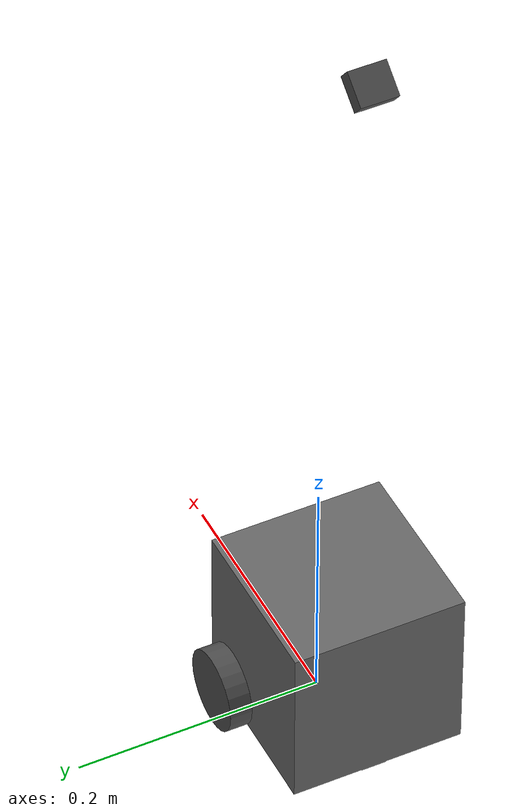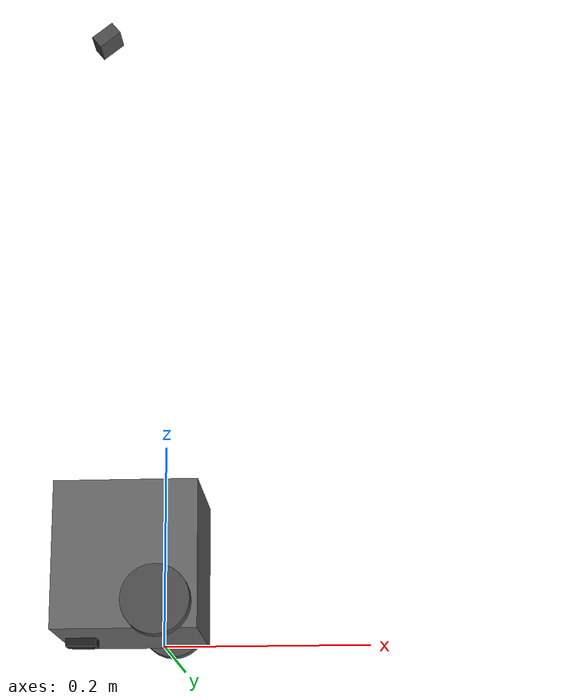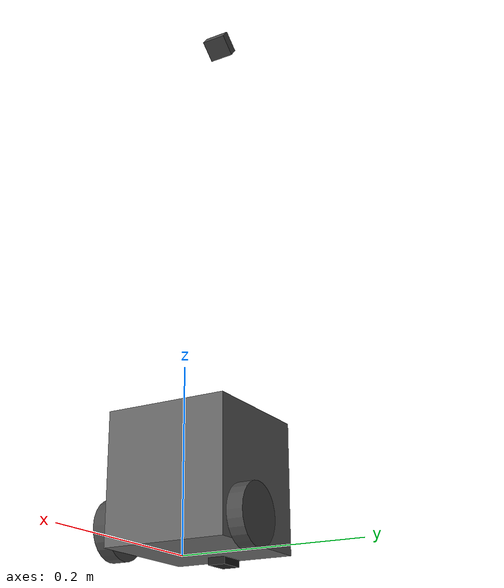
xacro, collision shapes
<?xml version="1.0" ?>
<robot name="turtlebot3_burger_for_autorace" xmlns:xacro="http://ros.org/wiki/xacro">

  <material name="black">
      <color rgba="0.0 0.0 0.0 1.0"/>
  </material>

  <material name="dark">
    <color rgba="0.3 0.3 0.3 1.0"/>
  </material>

  <material name="light_black">
    <color rgba="0.4 0.4 0.4 1.0"/>
  </material>

  <material name="blue">
    <color rgba="0.0 0.0 0.8 1.0"/>
  </material>

  <material name="green">
    <color rgba="0.0 0.8 0.0 1.0"/>
  </material>

  <material name="grey">
    <color rgba="0.5 0.5 0.5 1.0"/>
  </material>

  <material name="orange">
    <color rgba="1.0 0.42 0.04 1.0"/>
  </material>

  <material name="brown">
    <color rgba="1.0 0.81 0.76 1.0"/>
  </material>

  <material name="red">
    <color rgba="0.8 0.0 0.0 1.0"/>
  </material>

  <material name="white">
    <color rgba="1.0 1.0 1.0 1.0"/>
  </material>

  <link name="base_footprint"/>

  <link name="base_link">
    <visual>
      <origin xyz="-0.032 0 0.0" rpy="0 0 0"/>
      <geometry>
        <mesh filename="model://tb3/bases/burger_base.stl" scale="0.001 0.001 0.001"/>
      </geometry>
      <material name="light_black"/>
    </visual>

    <collision>
      <origin xyz="-0.032 0 0.070" rpy="0 0 0"/>
      <geometry>
        <box size="0.140 0.140 0.143"/>
      </geometry>
    </collision>

    <inertial>
      <origin xyz="0 0 0" rpy="0 0 0"/>
      <mass value="8.2573504e-01"/>
      <inertia ixx="2.2124416e-03" ixy="-1.2294101e-05" ixz="3.4938785e-05"
               iyy="2.1193702e-03" iyz="-5.0120904e-06"
               izz="2.0064271e-03" />
    </inertial>
  </link>

  <joint name="base_joint" type="fixed">
    <parent link="base_footprint"/>
    <child link="base_link"/>
    <origin xyz="0.0 0.0 0.010" rpy="0 0 0"/>
  </joint>

  <link name="scanner_link"/>

  <joint name="scanner_joint" type="fixed">
    <parent link="base_link"/>
    <child link="scanner_link"/>
    <origin xyz="0.0 0.0 0.25" rpy="0 0 0"/>
  </joint>

  <link name="wheel_l">
    <visual>
      <origin xyz="0 0 0" rpy="1.57 0 0"/>
      <geometry>
        <mesh filename="model://tb3/wheels/left_tire.stl" scale="0.001 0.001 0.001"/>
      </geometry>
      <material name="dark"/>
    </visual>

    <collision>
      <origin xyz="0 0 0" rpy="0 0 0"/>
      <geometry>
        <cylinder length="0.018" radius="0.033"/>
      </geometry>
    </collision>

    <inertial>
      <origin xyz="0 0 0" />
      <mass value="2.8498940e-02" />
      <inertia ixx="1.1175580e-05" ixy="-4.2369783e-11" ixz="-5.9381719e-09"
               iyy="1.1192413e-05" iyz="-1.4400107e-11"
               izz="2.0712558e-05" />
      </inertial>
  </link>

  <joint name="wheel_l_joint" type="continuous">
    <parent link="base_link"/>
    <child link="wheel_l"/>
    <origin xyz="0.0 0.08 0.023" rpy="-1.57 0 0"/>
    <axis xyz="0 0 1"/>
  </joint>

  <link name="wheel_r">
    <visual>
      <origin xyz="0 0 0" rpy="1.57 0 0"/>
      <geometry>
        <mesh filename="model://tb3/wheels/right_tire.stl" scale="0.001 0.001 0.001"/>
      </geometry>
      <material name="dark"/>
    </visual>

    <collision>
      <origin xyz="0 0 0" rpy="0 0 0"/>
      <geometry>
        <cylinder length="0.018" radius="0.033"/>
      </geometry>
    </collision>

    <inertial>
      <origin xyz="0 0 0" />
      <mass value="2.8498940e-02" />
      <inertia ixx="1.1175580e-05" ixy="-4.2369783e-11" ixz="-5.9381719e-09"
               iyy="1.1192413e-05" iyz="-1.4400107e-11"
               izz="2.0712558e-05" />
      </inertial>
  </link>

  <joint name="wheel_r_joint" type="continuous">
    <parent link="base_link"/>
    <child link="wheel_r"/>
    <origin xyz="0.0 -0.080 0.023" rpy="-1.57 0 0"/>
    <axis xyz="0 0 1"/>
  </joint>

  <link name="caster_back_link">
    <collision>
      <origin xyz="0 0.001 0" rpy="0 0 0"/>
      <geometry>
        <box size="0.030 0.009 0.020"/>
      </geometry>
    </collision>

    <inertial>
      <origin xyz="0 0 0" />
      <mass value="0.005" />
      <inertia ixx="0.001" ixy="0.0" ixz="0.0"
               iyy="0.001" iyz="0.0"
               izz="0.001" />
    </inertial>
  </link>

  <joint name="caster_back_joint" type="fixed">
    <parent link="base_link"/>
    <child link="caster_back_link"/>
    <origin xyz="-0.081 0 -0.004" rpy="-1.57 0 0"/>
  </joint>

  <link name="camera_link">
    <visual>
      <origin xyz="0 0 0" rpy="0 0 0"/>
      <geometry>
        <box size="0.015 0.030 0.027"/>
      </geometry>
      <material name="dark"/>
    </visual>
    <collision>
      <origin xyz="0 0 0" rpy="0 0 0"/>
      <geometry>
        <box size="0.015 0.030 0.027"/>
      </geometry>
    </collision>
  </link>

  <joint name="camera_joint" type="fixed">
	  <origin xyz="-0.07 0 0.65" rpy="0 0.9 0"/>
    <parent link="base_link"/>
    <child link="camera_link"/>
  </joint>

  <gazebo reference="base_link">
    <material>Gazebo/DarkGrey</material>
  </gazebo>

  <gazebo reference="wheel_l">
    <mu1>0.1</mu1>
    <mu2>0.1</mu2>
    <kp>500000.0</kp>
    <kd>10.0</kd>
    <minDepth>0.001</minDepth>
    <maxVel>0.1</maxVel>
    <fdir1>1 0 0</fdir1>
    <material>Gazebo/FlatBlack</material>
  </gazebo>

  <gazebo reference="wheel_r">
    <mu1>0.1</mu1>
    <mu2>0.1</mu2>
    <kp>500000.0</kp>
    <kd>10.0</kd>
    <minDepth>0.001</minDepth>
    <maxVel>0.1</maxVel>
    <fdir1>1 0 0</fdir1>
    <material>Gazebo/FlatBlack</material>
  </gazebo>

  <gazebo reference="caster_back_link">
    <mu1>0.1</mu1>
    <mu2>0.1</mu2>
    <kp>1000000.0</kp>
    <kd>100.0</kd>
    <minDepth>0.001</minDepth>
    <maxVel>1.0</maxVel>
    <material>Gazebo/FlatBlack</material>
  </gazebo>

  <gazebo>
    <plugin name="joint_states" filename="libgazebo_ros_joint_state_publisher.so">
      <joint_name>wheel_l_joint</joint_name>
      <joint_name>wheel_r_joint</joint_name>
    </plugin>
  </gazebo>
  <gazebo>
    <plugin name="field_robot_diff_drive_controller" filename="libgazebo_ros_diff_drive.so">

      <ros>
        <argument>cmd_vel:=cmd_vel</argument>
        <argument>odom:=odom</argument>
      </ros>

      <update_rate>30</update_rate>
      <left_joint>wheel_l_joint</left_joint>
      <right_joint>wheel_r_joint</right_joint>
      <wheel_separation>0.160</wheel_separation>
      <wheel_diameter>0.066</wheel_diameter>
      <odometry_frame>odom</odometry_frame>

      <!-- NEWCOMERS -->
      <publish_odom_tf>true</publish_odom_tf>

      <max_wheel_acceleration>1</max_wheel_acceleration>
      <max_wheel_torque>10</max_wheel_torque>

    </plugin>
  </gazebo>

  <gazebo reference="camera_link">
    <sensor type="camera" name="sensor_name">
      <always_on>0</always_on>
      <update_rate>1</update_rate>
      <camera name="camera_name">
        <horizontal_fov>1.2</horizontal_fov>
        <image>
          <width>420</width>
          <height>240</height>
          <format>R8G8B8</format>
        </image>
        <clip>
          <near>0.02</near>
          <far>300</far>
        </clip>
        <distortion>
          <k1>0.0</k1>
          <k2>0.0</k2>
          <k3>0.0</k3>
          <p1>0.0</p1>
          <p2>0.0</p2>
          <center>0.5 0.5</center>
        </distortion>
      </camera>
      <plugin name="gazebo_cam_plugin" filename="libgazebo_ros_camera.so">

        <ros>
          <namespace>field_robot</namespace>
          <argument>image_raw:=image</argument>
          <argument>camera_info:=camera_info</argument>
        </ros>

        <camera_name>gazebo_cam</camera_name>
        <frame_name>camera_link</frame_name>
        <hack_baseline>0.07</hack_baseline>
      </plugin>
    </sensor>
  </gazebo>

  <gazebo reference="scanner_link">
    <sensor name="laser_scanner" type="ray">
      <always_on>true</always_on>
      <visualize>false</visualize>
      <pose>0 0 0 0 0 0</pose>
      <update_rate>5</update_rate>
      <ray>
        <scan>
          <horizontal>
            <samples>360</samples>
            <resolution>1.000000</resolution>
            <min_angle>0.000000</min_angle>
            <max_angle>6.280000</max_angle>
          </horizontal>
        </scan>
        <range>
          <min>0.120000</min>
          <max>3.5</max>
          <resolution>0.015000</resolution>
        </range>
        <noise>
          <type>gaussian</type>
          <mean>0.0</mean>
          <stddev>0.01</stddev>
        </noise>
      </ray>
      <plugin name="tb3_laserscanner" filename="libgazebo_ros_ray_sensor.so">
        <ros>
          <namespace>field_robot</namespace>
          <remapping>~/out:=scan</remapping>
        </ros>
        <output_type>sensor_msgs/LaserScan</output_type>
        <frame_name>scanner_link</frame_name>
      </plugin>
    </sensor>
  </gazebo>

</robot>
